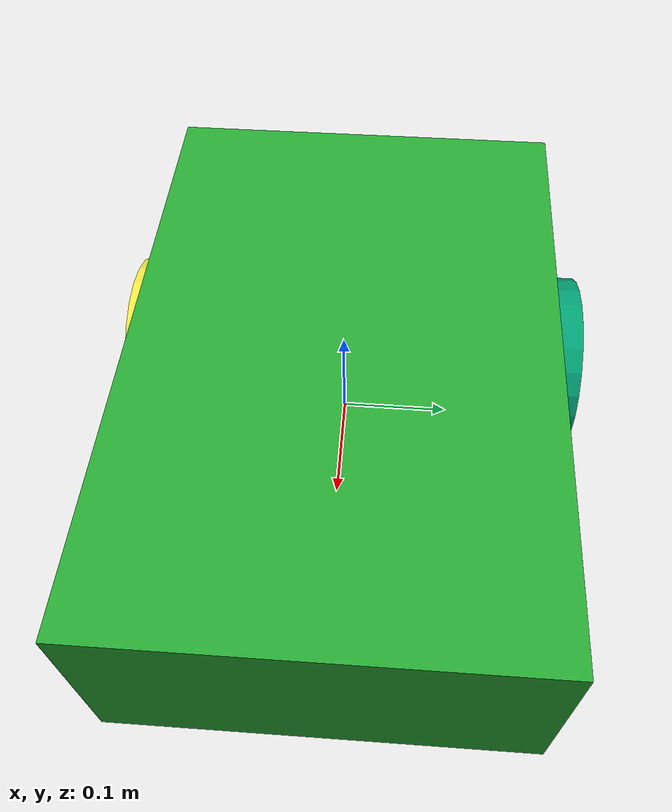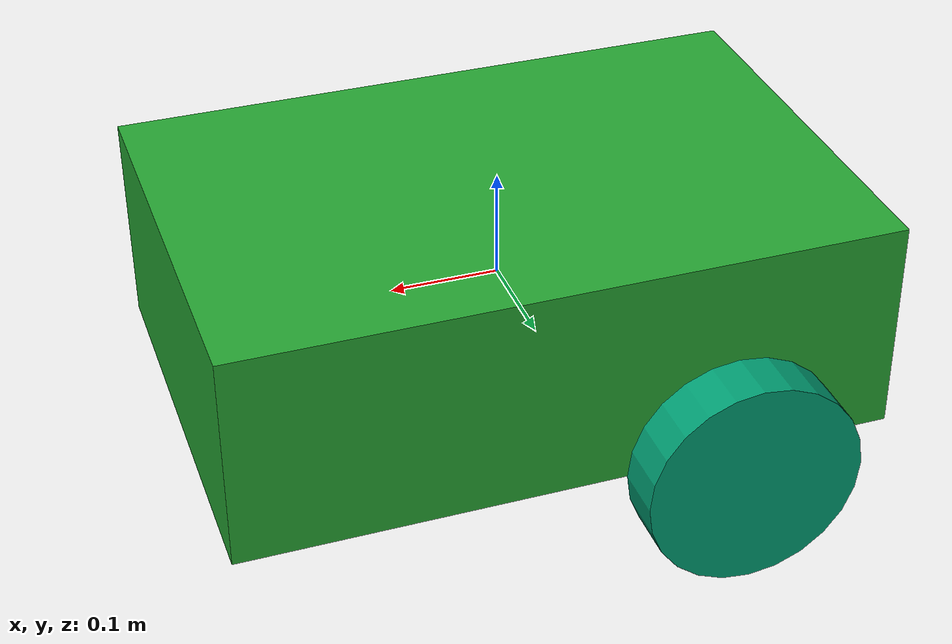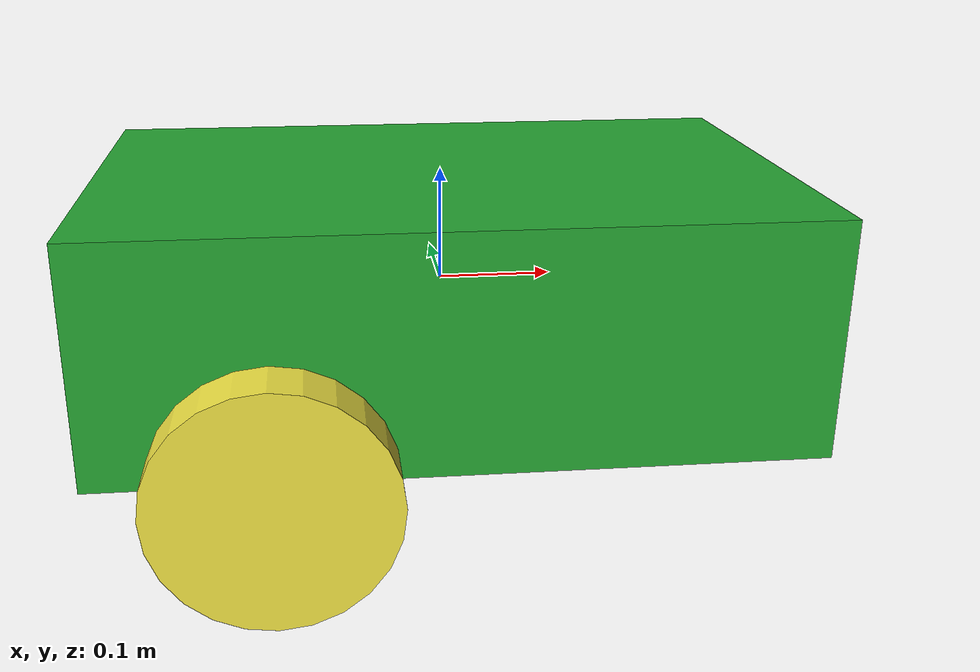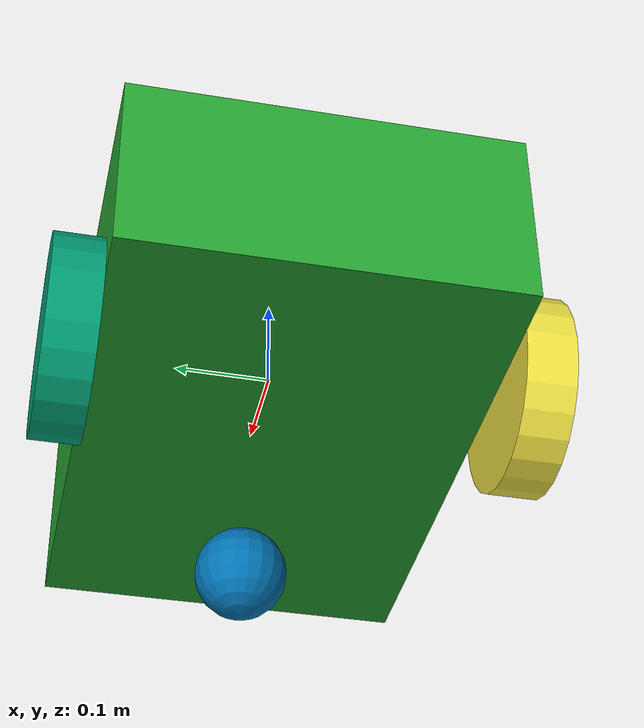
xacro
<?xml version = "1.0"?>
<robot xmlns:xacro="http://www.ros.org/wiki/xacro" name="robot">

    <xacro:property name="base_length" value="0.6" />
    <xacro:property name="base_width" value="0.4" />
    <xacro:property name="base_height" value="0.2" />
    <xacro:property name="wheel_radius" value="0.1" />
    <xacro:property name="wheel_length" value="0.05" />

    <link name="base_footprint"/>
    <link name = "base_link">
        <visual>
            <geometry>
                <box size = "${base_length} ${base_width} ${base_height}"/>
            </geometry>
            <origin xyz = "0 0 ${base_height}" rpy="0 0 0"/>
            <material name="green"/>
        </visual>
        <collision>
            <geometry>
                <box size = "${base_length} ${base_width} ${base_height}"/>
            </geometry>
            <origin xyz = "0 0 ${base_height}" rpy="0 0 0"/>
            <material name="green"/>
        </collision>
        <xacro:box_inertia m="5.0" l="${2*base_length}" w="${2*base_width}" h="${2*base_height}" xyz="0 0 0" rpy="0 0 0"/>
    </link>

    <link name = "second_link">
        <visual>
            <geometry>
                <cylinder radius="${wheel_radius}" length="${wheel_length}"/>
            </geometry>
            <origin xyz="0 0 0" rpy="0 0 0"/>
        </visual>
        <collision>
            <geometry>
                <cylinder radius="${wheel_radius}" length="${wheel_length}"/>
            </geometry>
            <origin xyz="0 0 0" rpy="0 0 0"/>
        </collision>
        <xacro:cylinder_inertia m="1.0" r="${2*wheel_radius}" h="${2*wheel_length}" xyz="0 0 0" rpy="${pi/2} 0 0"/>
    </link>

    <joint name="base_dummy_joint" type="fixed">
        <parent link="base_footprint"/>
        <child link="base_link"/>
        <origin xyz="0 0 ${-base_height}" rpy="0 0 0"/>
        <axis xyz = "0 0 1"/>
    </joint>

    <joint name="base_second_joint" type="continuous">
        <parent link="base_link"/>
        <child link="second_link"/>
        <origin xyz="${-base_length/4} ${base_width/2 + wheel_length/2} ${wheel_radius}" rpy="${pi/2}  0 0"/>
        <axis xyz = "0 0 1"/>
    </joint>
    <link name = "Third_link">
        <visual>
            <geometry>
                <cylinder radius="${wheel_radius}" length="${wheel_length}"/>

            </geometry>
            <origin xyz="0 0 0" rpy="0 0 0"/>
        </visual>
        <collision>
            <geometry>
                <cylinder radius="${wheel_radius}" length="${wheel_length}"/>

            </geometry>
            <origin xyz="0 0 0" rpy="0 0 0"/>
        </collision>
        <xacro:cylinder_inertia m="1.0" r="${2*wheel_radius}" h="${2*wheel_length}" xyz="0 0 0" rpy="${pi/2} 0 0"/>
    </link>
    <joint name="base_third_joint" type="continuous">
        <parent link="base_link"/>
        <child link="Third_link"/>
        <origin xyz="${-base_length/4} ${-(base_width/2+wheel_length/2)} ${wheel_radius}" rpy="${pi/2} 0 0"/>
        <axis xyz = "0 0 1"/>
    </joint>

    <link name="castor_wheel">
        <visual>
            <geometry>
                <sphere radius="${wheel_radius/2}"/>

            </geometry>
            <origin xyz="0 0 0" rpy="0 0 0"/>
        </visual>
        <collision>
            <geometry>
                <sphere radius="${wheel_radius/2}"/>

            </geometry>
            <origin xyz="0 0 0" rpy="0 0 0"/>
        </collision>
        <xacro:sphere_inertia m="0.5" r="${2*wheel_radius/2}" xyz="0 0 0" rpy="0 0 0"/>

    </link>

    <joint name="base_castor_joint" type="continuous">
        <parent link="base_link"/>
        <child link="castor_wheel"/>
        <origin xyz="${base_length/4} 0 ${wheel_radius/2}" rpy="0 0 0"/>
        <axis xyz = "0 0 1"/>
    </joint>
</robot>
